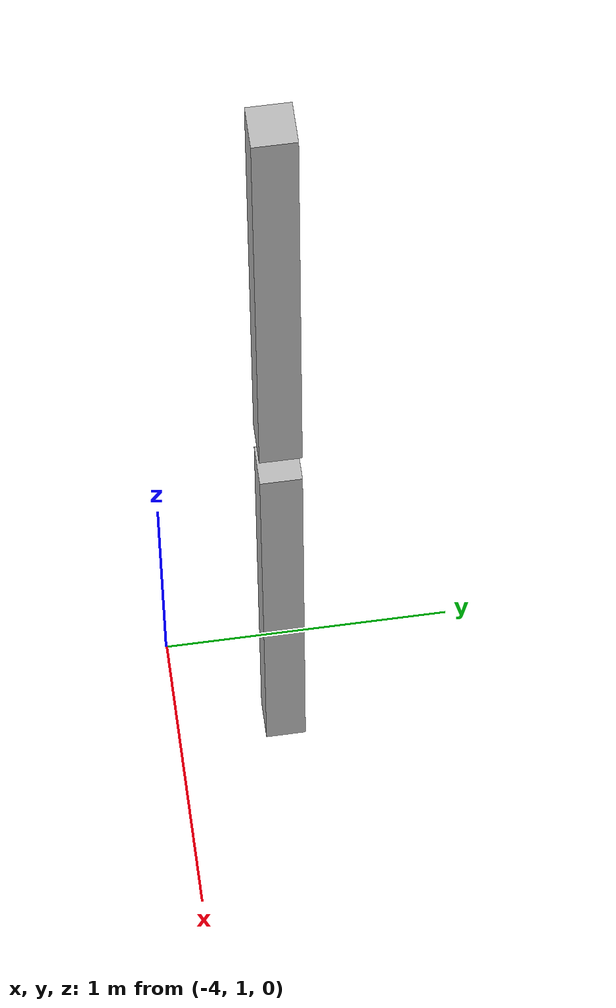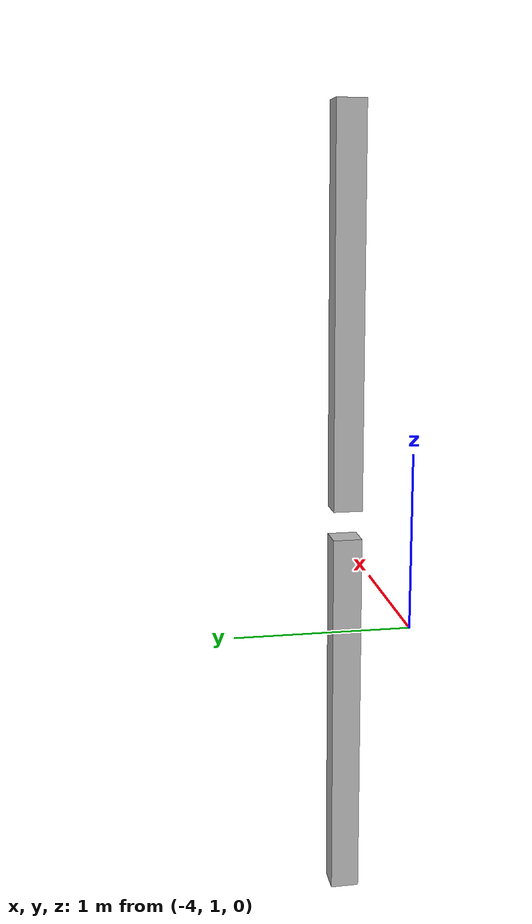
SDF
<sdf version="1.7">
 <world name="default">
  <model name="orthogonal_747_2.000.15_TS">
   <static>1</static>
   <link name="z_link_1_3_1">
    <inertial>
     <mass>1</mass>
     <inertia>
      <ixx>0.166667</ixx>
      <ixy>0</ixy>
      <ixz>0</ixz>
      <iyy>0.166667</iyy>
      <iyz>0</iyz>
      <izz>0.166667</izz>
     </inertia>
    </inertial>
    <pose>2.15 6.45 2.15 0 -0 0</pose>
    <visual name="visual_0">
     <laser_retro>1359</laser_retro>
     <geometry><box><size>0.15 1e-06 2</size></box></geometry>
     <material>
      <script><name>Gazebo/Grey</name><uri>file://media/materials/scripts/gazebo.material</uri></script>
      <shader type="pixel"><normal_map>__default__</normal_map></shader>
      <ambient>0.678 0.498 0.659 1</ambient>
      <diffuse>0.7 0.7 0.7 1</diffuse>
      <specular>0.01 0.01 0.01 1</specular>
      <emissive>0 0 0 1</emissive>
     </material>
     <pose>0 -0.075 0 0 -0 0</pose>
     <transparency>1</transparency>
    </visual>
    <visual name="visual_1">
     <laser_retro>1360</laser_retro>
     <geometry><box><size>0.15 1e-06 2</size></box></geometry>
     <material>
      <script><name>Gazebo/Grey</name><uri>file://media/materials/scripts/gazebo.material</uri></script>
      <shader type="pixel"><normal_map>__default__</normal_map></shader>
      <ambient>0.447 0.624 0.812 1</ambient>
      <diffuse>0.7 0.7 0.7 1</diffuse>
      <specular>0.01 0.01 0.01 1</specular>
      <emissive>0 0 0 1</emissive>
     </material>
     <pose>0 0.075 0 0 -0 0</pose>
     <transparency>1</transparency>
    </visual>
    <visual name="visual_2">
     <laser_retro>1361</laser_retro>
     <geometry><box><size>0.15 0.15 1e-06</size></box></geometry>
     <material>
      <script><name>Gazebo/Grey</name><uri>file://media/materials/scripts/gazebo.material</uri></script>
      <shader type="pixel"><normal_map>__default__</normal_map></shader>
      <ambient>0.988 0.686 0.243 1</ambient>
      <diffuse>0.7 0.7 0.7 1</diffuse>
      <specular>0.01 0.01 0.01 1</specular>
      <emissive>0 0 0 1</emissive>
     </material>
     <pose>0 0 -1 0 -0 0</pose>
     <transparency>1</transparency>
    </visual>
    <visual name="visual_3">
     <laser_retro>1362</laser_retro>
     <geometry><box><size>1e-06 0.15 2</size></box></geometry>
     <material>
      <script><name>Gazebo/Grey</name><uri>file://media/materials/scripts/gazebo.material</uri></script>
      <shader type="pixel"><normal_map>__default__</normal_map></shader>
      <ambient>0.988 0.914 0.31 1</ambient>
      <diffuse>0.7 0.7 0.7 1</diffuse>
      <specular>0.01 0.01 0.01 1</specular>
      <emissive>0 0 0 1</emissive>
     </material>
     <pose>0.075 0 0 0 -0 0</pose>
     <transparency>1</transparency>
    </visual>
    <visual name="visual_4">
     <laser_retro>1363</laser_retro>
     <geometry><box><size>0.15 0.15 1e-06</size></box></geometry>
     <material>
      <script><name>Gazebo/Grey</name><uri>file://media/materials/scripts/gazebo.material</uri></script>
      <shader type="pixel"><normal_map>__default__</normal_map></shader>
      <ambient>0.937 0.161 0.161 1</ambient>
      <diffuse>0.7 0.7 0.7 1</diffuse>
      <specular>0.01 0.01 0.01 1</specular>
      <emissive>0 0 0 1</emissive>
     </material>
     <pose>0 0 1 0 -0 0</pose>
     <transparency>1</transparency>
    </visual>
    <visual name="visual_5">
     <laser_retro>1364</laser_retro>
     <geometry><box><size>1e-06 0.15 2</size></box></geometry>
     <material>
      <script><name>Gazebo/Grey</name><uri>file://media/materials/scripts/gazebo.material</uri></script>
      <shader type="pixel"><normal_map>__default__</normal_map></shader>
      <ambient>0.541 0.886 0.204 1</ambient>
      <diffuse>0.7 0.7 0.7 1</diffuse>
      <specular>0.01 0.01 0.01 1</specular>
      <emissive>0 0 0 1</emissive>
     </material>
     <pose>-0.075 0 0 0 -0 0</pose>
     <transparency>1</transparency>
    </visual>
    <visual name="visual_texture">
     <geometry><box><size>0.149985 0.149985 1.9998</size></box></geometry>
     <material>
      <script>
       <uri>model://BASE_MODELS/simple_block_v2_textured/materials/scripts</uri>
       <uri>model://BASE_MODELS/simple_block_v2_textured/materials/textures</uri>
       <name>metal</name>
      </script>
     </material>
     <laser_retro>1365</laser_retro>
    </visual>
    <collision name="collision">
     <geometry><box><size>0.15 0.15 2</size></box></geometry>
     <surface>
      <friction>
       <ode><mu>1</mu><mu2>1</mu2><fdir1>0 0 0</fdir1><slip1>0</slip1><slip2>0</slip2></ode>
       <torsional>
        <coefficient>1</coefficient>
        <patch_radius>0</patch_radius>
        <surface_radius>0</surface_radius>
        <use_patch_radius>1</use_patch_radius>
        <ode><slip>0</slip></ode>
       </torsional>
      </friction>
      <bounce><restitution_coefficient>0</restitution_coefficient><threshold>1e+06</threshold></bounce>
      <contact>
       <collide_without_contact>0</collide_without_contact>
       <collide_without_contact_bitmask>1</collide_without_contact_bitmask>
       <collide_bitmask>1</collide_bitmask>
       <ode>
        <soft_cfm>0</soft_cfm>
        <soft_erp>0.2</soft_erp>
        <kp>1e+13</kp>
        <kd>1</kd>
        <max_vel>0.01</max_vel>
        <min_depth>0</min_depth>
       </ode>
       <bullet>
        <split_impulse>1</split_impulse>
        <split_impulse_penetration_threshold>-0.01</split_impulse_penetration_threshold>
        <soft_cfm>0</soft_cfm>
        <soft_erp>0.2</soft_erp>
        <kp>1e+13</kp>
        <kd>1</kd>
       </bullet>
      </contact>
     </surface>
    </collision>
   </link>
   <link name="z_link_2_3_1">
    <inertial>
     <mass>1</mass>
     <inertia>
      <ixx>0.166667</ixx>
      <ixy>0</ixy>
      <ixz>0</ixz>
      <iyy>0.166667</iyy>
      <iyz>0</iyz>
      <izz>0.166667</izz>
     </inertia>
    </inertial>
    <pose>2.15 6.45 4.3 0 -0 0</pose>
    <visual name="visual_0">
     <laser_retro>2262</laser_retro>
     <geometry><box><size>0.15 1e-06 2</size></box></geometry>
     <material>
      <script><name>Gazebo/Grey</name><uri>file://media/materials/scripts/gazebo.material</uri></script>
      <shader type="pixel"><normal_map>__default__</normal_map></shader>
      <ambient>0.678 0.498 0.659 1</ambient>
      <diffuse>0.7 0.7 0.7 1</diffuse>
      <specular>0.01 0.01 0.01 1</specular>
      <emissive>0 0 0 1</emissive>
     </material>
     <pose>0 -0.075 0 0 -0 0</pose>
     <transparency>1</transparency>
    </visual>
    <visual name="visual_1">
     <laser_retro>2263</laser_retro>
     <geometry><box><size>0.15 1e-06 2</size></box></geometry>
     <material>
      <script><name>Gazebo/Grey</name><uri>file://media/materials/scripts/gazebo.material</uri></script>
      <shader type="pixel"><normal_map>__default__</normal_map></shader>
      <ambient>0.447 0.624 0.812 1</ambient>
      <diffuse>0.7 0.7 0.7 1</diffuse>
      <specular>0.01 0.01 0.01 1</specular>
      <emissive>0 0 0 1</emissive>
     </material>
     <pose>0 0.075 0 0 -0 0</pose>
     <transparency>1</transparency>
    </visual>
    <visual name="visual_2">
     <laser_retro>2264</laser_retro>
     <geometry><box><size>0.15 0.15 1e-06</size></box></geometry>
     <material>
      <script><name>Gazebo/Grey</name><uri>file://media/materials/scripts/gazebo.material</uri></script>
      <shader type="pixel"><normal_map>__default__</normal_map></shader>
      <ambient>0.988 0.686 0.243 1</ambient>
      <diffuse>0.7 0.7 0.7 1</diffuse>
      <specular>0.01 0.01 0.01 1</specular>
      <emissive>0 0 0 1</emissive>
     </material>
     <pose>0 0 -1 0 -0 0</pose>
     <transparency>1</transparency>
    </visual>
    <visual name="visual_3">
     <laser_retro>2265</laser_retro>
     <geometry><box><size>1e-06 0.15 2</size></box></geometry>
     <material>
      <script><name>Gazebo/Grey</name><uri>file://media/materials/scripts/gazebo.material</uri></script>
      <shader type="pixel"><normal_map>__default__</normal_map></shader>
      <ambient>0.988 0.914 0.31 1</ambient>
      <diffuse>0.7 0.7 0.7 1</diffuse>
      <specular>0.01 0.01 0.01 1</specular>
      <emissive>0 0 0 1</emissive>
     </material>
     <pose>0.075 0 0 0 -0 0</pose>
     <transparency>1</transparency>
    </visual>
    <visual name="visual_4">
     <laser_retro>2266</laser_retro>
     <geometry><box><size>0.15 0.15 1e-06</size></box></geometry>
     <material>
      <script><name>Gazebo/Grey</name><uri>file://media/materials/scripts/gazebo.material</uri></script>
      <shader type="pixel"><normal_map>__default__</normal_map></shader>
      <ambient>0.937 0.161 0.161 1</ambient>
      <diffuse>0.7 0.7 0.7 1</diffuse>
      <specular>0.01 0.01 0.01 1</specular>
      <emissive>0 0 0 1</emissive>
     </material>
     <pose>0 0 1 0 -0 0</pose>
     <transparency>1</transparency>
    </visual>
    <visual name="visual_5">
     <laser_retro>2267</laser_retro>
     <geometry><box><size>1e-06 0.15 2</size></box></geometry>
     <material>
      <script><name>Gazebo/Grey</name><uri>file://media/materials/scripts/gazebo.material</uri></script>
      <shader type="pixel"><normal_map>__default__</normal_map></shader>
      <ambient>0.541 0.886 0.204 1</ambient>
      <diffuse>0.7 0.7 0.7 1</diffuse>
      <specular>0.01 0.01 0.01 1</specular>
      <emissive>0 0 0 1</emissive>
     </material>
     <pose>-0.075 0 0 0 -0 0</pose>
     <transparency>1</transparency>
    </visual>
    <visual name="visual_texture">
     <geometry><box><size>0.149985 0.149985 1.9998</size></box></geometry>
     <material>
      <script>
       <uri>model://BASE_MODELS/simple_block_v2_textured/materials/scripts</uri>
       <uri>model://BASE_MODELS/simple_block_v2_textured/materials/textures</uri>
       <name>metal</name>
      </script>
     </material>
     <laser_retro>2268</laser_retro>
    </visual>
    <collision name="collision">
     <geometry><box><size>0.15 0.15 2</size></box></geometry>
     <surface>
      <friction>
       <ode><mu>1</mu><mu2>1</mu2><fdir1>0 0 0</fdir1><slip1>0</slip1><slip2>0</slip2></ode>
       <torsional>
        <coefficient>1</coefficient>
        <patch_radius>0</patch_radius>
        <surface_radius>0</surface_radius>
        <use_patch_radius>1</use_patch_radius>
        <ode><slip>0</slip></ode>
       </torsional>
      </friction>
      <bounce><restitution_coefficient>0</restitution_coefficient><threshold>1e+06</threshold></bounce>
      <contact>
       <collide_without_contact>0</collide_without_contact>
       <collide_without_contact_bitmask>1</collide_without_contact_bitmask>
       <collide_bitmask>1</collide_bitmask>
       <ode>
        <soft_cfm>0</soft_cfm>
        <soft_erp>0.2</soft_erp>
        <kp>1e+13</kp>
        <kd>1</kd>
        <max_vel>0.01</max_vel>
        <min_depth>0</min_depth>
       </ode>
       <bullet>
        <split_impulse>1</split_impulse>
        <split_impulse_penetration_threshold>-0.01</split_impulse_penetration_threshold>
        <soft_cfm>0</soft_cfm>
        <soft_erp>0.2</soft_erp>
        <kp>1e+13</kp>
        <kd>1</kd>
       </bullet>
      </contact>
     </surface>
    </collision>
   </link>
   <pose>-6.47624 -5 -2.5 0 -0 0</pose>
  </model>
 </world>
</sdf>
